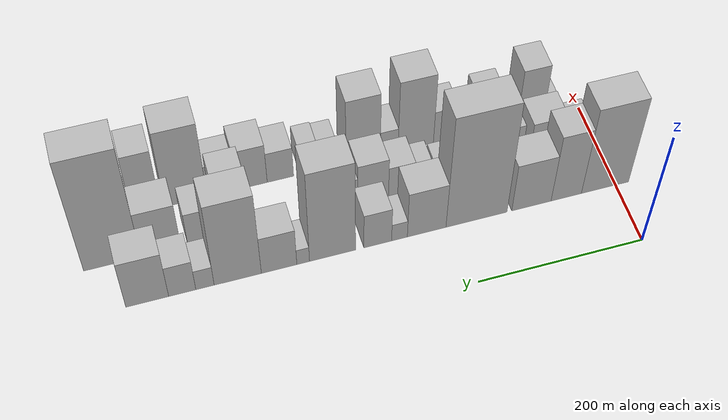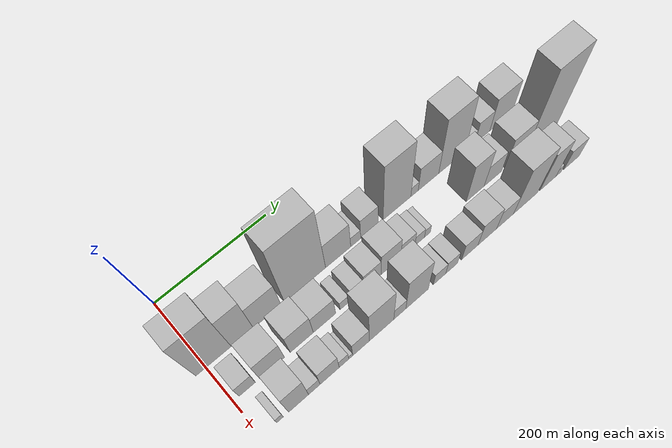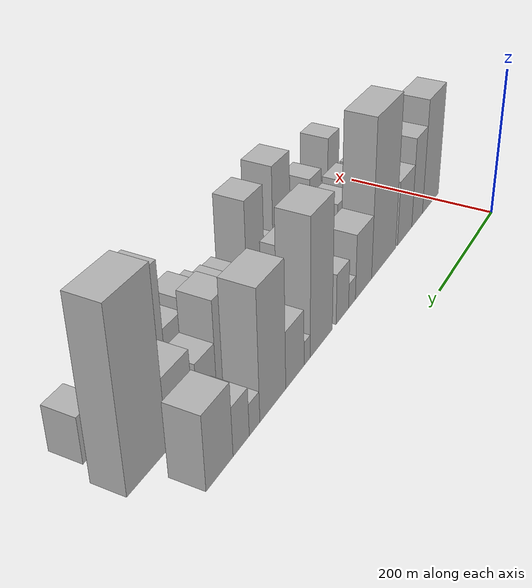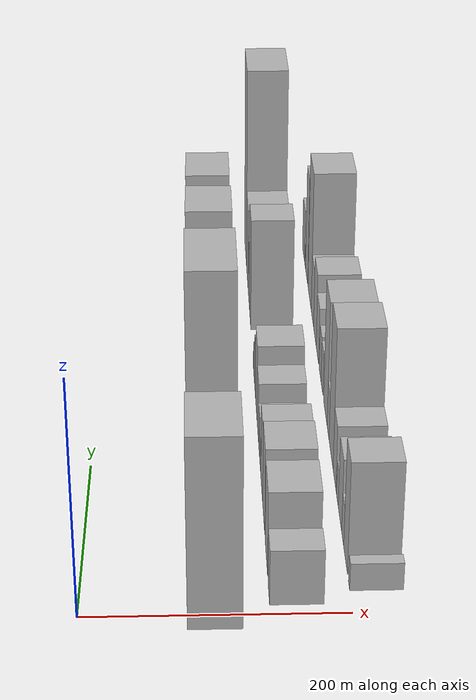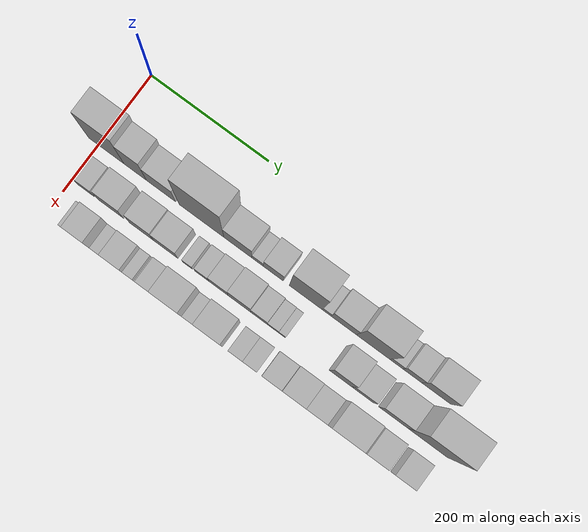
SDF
<sdf version="1.6">
 <world name="default">
  <model name="building_19">
   <static>1</static>
   <pose>100.0000 13.7449 0 0.000000 0.000000 0.000000</pose>
   <link name="link">
    <pose>0 0 81.00 0 0 0</pose>
    <collision name="collision"><geometry><box><size>40.0000 60.1446 162.0000</size></box></geometry></collision>
    <visual name="visual">
     <cast_shadows>0</cast_shadows>
     <geometry><box><size>40.0000 60.1446 162.0000</size></box></geometry>
     <material>
      <script>
       <uri>model://HANNAS_wall/materials/scripts</uri>
       <uri>model://HANNAS_wall/materials/textures</uri>
       <name>vrc/HANNAS_wall</name>
      </script>
     </material>
    </visual>
   </link>
  </model>
  <model name="building_20">
   <static>1</static>
   <pose>100.0000 62.9735 0 0.000000 0.000000 0.000000</pose>
   <link name="link">
    <pose>0 0 63.00 0 0 0</pose>
    <collision name="collision"><geometry><box><size>40.0000 38.3127 126.0000</size></box></geometry></collision>
    <visual name="visual">
     <cast_shadows>0</cast_shadows>
     <geometry><box><size>40.0000 38.3127 126.0000</size></box></geometry>
     <material>
      <script>
       <uri>model://HANNAS_wall/materials/scripts</uri>
       <uri>model://HANNAS_wall/materials/textures</uri>
       <name>vrc/HANNAS_wall</name>
      </script>
     </material>
    </visual>
   </link>
  </model>
  <model name="building_21">
   <static>1</static>
   <pose>100.0000 106.6923 0 0.000000 0.000000 0.000000</pose>
   <link name="link">
    <pose>0 0 45.00 0 0 0</pose>
    <collision name="collision"><geometry><box><size>40.0000 49.1248 90.0000</size></box></geometry></collision>
    <visual name="visual">
     <cast_shadows>0</cast_shadows>
     <geometry><box><size>40.0000 49.1248 90.0000</size></box></geometry>
     <material>
      <script>
       <uri>model://HANNAS_wall/materials/scripts</uri>
       <uri>model://HANNAS_wall/materials/textures</uri>
       <name>vrc/HANNAS_wall</name>
      </script>
     </material>
    </visual>
   </link>
  </model>
  <model name="building_22">
   <static>1</static>
   <pose>100.0000 174.9727 0 0.000000 0.000000 0.000000</pose>
   <link name="link">
    <pose>0 0 105.00 0 0 0</pose>
    <collision name="collision"><geometry><box><size>40.0000 75.4360 210.0000</size></box></geometry></collision>
    <visual name="visual">
     <cast_shadows>0</cast_shadows>
     <geometry><box><size>40.0000 75.4360 210.0000</size></box></geometry>
     <material>
      <script>
       <uri>model://HANNAS_wall/materials/scripts</uri>
       <uri>model://HANNAS_wall/materials/textures</uri>
       <name>vrc/HANNAS_wall</name>
      </script>
     </material>
    </visual>
   </link>
  </model>
  <model name="building_23">
   <static>1</static>
   <pose>100.0000 236.2679 0 0.000000 0.000000 0.000000</pose>
   <link name="link">
    <pose>0 0 43.50 0 0 0</pose>
    <collision name="collision"><geometry><box><size>40.0000 47.1543 87.0000</size></box></geometry></collision>
    <visual name="visual">
     <cast_shadows>0</cast_shadows>
     <geometry><box><size>40.0000 47.1543 87.0000</size></box></geometry>
     <material>
      <script>
       <uri>model://HANNAS_wall/materials/scripts</uri>
       <uri>model://HANNAS_wall/materials/textures</uri>
       <name>vrc/HANNAS_wall</name>
      </script>
     </material>
    </visual>
   </link>
  </model>
  <model name="building_24">
   <static>1</static>
   <pose>100.0000 269.3760 0 0.000000 0.000000 0.000000</pose>
   <link name="link">
    <pose>0 0 16.50 0 0 0</pose>
    <collision name="collision"><geometry><box><size>40.0000 19.0619 33.0000</size></box></geometry></collision>
    <visual name="visual">
     <cast_shadows>0</cast_shadows>
     <geometry><box><size>40.0000 19.0619 33.0000</size></box></geometry>
     <material>
      <script>
       <uri>model://HANNAS_wall/materials/scripts</uri>
       <uri>model://HANNAS_wall/materials/textures</uri>
       <name>vrc/HANNAS_wall</name>
      </script>
     </material>
    </visual>
   </link>
  </model>
  <model name="building_25">
   <static>1</static>
   <pose>100.0000 295.6303 0 0.000000 0.000000 0.000000</pose>
   <link name="link">
    <pose>0 0 33.00 0 0 0</pose>
    <collision name="collision"><geometry><box><size>40.0000 33.4467 66.0000</size></box></geometry></collision>
    <visual name="visual">
     <cast_shadows>0</cast_shadows>
     <geometry><box><size>40.0000 33.4467 66.0000</size></box></geometry>
     <material>
      <script>
       <uri>model://HANNAS_wall/materials/scripts</uri>
       <uri>model://HANNAS_wall/materials/textures</uri>
       <name>vrc/HANNAS_wall</name>
      </script>
     </material>
    </visual>
   </link>
  </model>
  <model name="building_26">
   <static>1</static>
   <pose>100.0000 349.8147 0 0.000000 0.000000 0.000000</pose>
   <link name="link">
    <pose>0 0 87.00 0 0 0</pose>
    <collision name="collision"><geometry><box><size>40.0000 54.9222 174.0000</size></box></geometry></collision>
    <visual name="visual">
     <cast_shadows>0</cast_shadows>
     <geometry><box><size>40.0000 54.9222 174.0000</size></box></geometry>
     <material>
      <script>
       <uri>model://HANNAS_wall/materials/scripts</uri>
       <uri>model://HANNAS_wall/materials/textures</uri>
       <name>vrc/HANNAS_wall</name>
      </script>
     </material>
    </visual>
   </link>
  </model>
  <model name="building_27">
   <static>1</static>
   <pose>100.0000 384.7906 0 0.000000 0.000000 0.000000</pose>
   <link name="link">
    <pose>0 0 15.00 0 0 0</pose>
    <collision name="collision"><geometry><box><size>40.0000 15.0295 30.0000</size></box></geometry></collision>
    <visual name="visual">
     <cast_shadows>0</cast_shadows>
     <geometry><box><size>40.0000 15.0295 30.0000</size></box></geometry>
     <material>
      <script>
       <uri>model://HANNAS_wall/materials/scripts</uri>
       <uri>model://HANNAS_wall/materials/textures</uri>
       <name>vrc/HANNAS_wall</name>
      </script>
     </material>
    </visual>
   </link>
  </model>
  <model name="building_28">
   <static>1</static>
   <pose>100.0000 413.1825 0 0.000000 0.000000 0.000000</pose>
   <link name="link">
    <pose>0 0 36.00 0 0 0</pose>
    <collision name="collision"><geometry><box><size>40.0000 41.7544 72.0000</size></box></geometry></collision>
    <visual name="visual">
     <cast_shadows>0</cast_shadows>
     <geometry><box><size>40.0000 41.7544 72.0000</size></box></geometry>
     <material>
      <script>
       <uri>model://HANNAS_wall/materials/scripts</uri>
       <uri>model://HANNAS_wall/materials/textures</uri>
       <name>vrc/HANNAS_wall</name>
      </script>
     </material>
    </visual>
   </link>
  </model>
  <model name="building_29">
   <static>1</static>
   <pose>100.0000 461.6059 0 0.000000 0.000000 0.000000</pose>
   <link name="link">
    <pose>0 0 79.50 0 0 0</pose>
    <collision name="collision"><geometry><box><size>40.0000 55.0923 159.0000</size></box></geometry></collision>
    <visual name="visual">
     <cast_shadows>0</cast_shadows>
     <geometry><box><size>40.0000 55.0923 159.0000</size></box></geometry>
     <material>
      <script>
       <uri>model://HANNAS_wall/materials/scripts</uri>
       <uri>model://HANNAS_wall/materials/textures</uri>
       <name>vrc/HANNAS_wall</name>
      </script>
     </material>
    </visual>
   </link>
  </model>
  <model name="building_30">
   <static>1</static>
   <pose>100.0000 499.7639 0 0.000000 0.000000 0.000000</pose>
   <link name="link">
    <pose>0 0 19.50 0 0 0</pose>
    <collision name="collision"><geometry><box><size>40.0000 21.2238 39.0000</size></box></geometry></collision>
    <visual name="visual">
     <cast_shadows>0</cast_shadows>
     <geometry><box><size>40.0000 21.2238 39.0000</size></box></geometry>
     <material>
      <script>
       <uri>model://HANNAS_wall/materials/scripts</uri>
       <uri>model://HANNAS_wall/materials/textures</uri>
       <name>vrc/HANNAS_wall</name>
      </script>
     </material>
    </visual>
   </link>
  </model>
  <model name="building_31">
   <static>1</static>
   <pose>100.0000 526.0002 0 0.000000 0.000000 0.000000</pose>
   <link name="link">
    <pose>0 0 30.00 0 0 0</pose>
    <collision name="collision"><geometry><box><size>40.0000 31.2488 60.0000</size></box></geometry></collision>
    <visual name="visual">
     <cast_shadows>0</cast_shadows>
     <geometry><box><size>40.0000 31.2488 60.0000</size></box></geometry>
     <material>
      <script>
       <uri>model://HANNAS_wall/materials/scripts</uri>
       <uri>model://HANNAS_wall/materials/textures</uri>
       <name>vrc/HANNAS_wall</name>
      </script>
     </material>
    </visual>
   </link>
  </model>
  <model name="building_32">
   <static>1</static>
   <pose>100.0000 566.1386 0 0.000000 0.000000 0.000000</pose>
   <link name="link">
    <pose>0 0 45.00 0 0 0</pose>
    <collision name="collision"><geometry><box><size>40.0000 49.0280 90.0000</size></box></geometry></collision>
    <visual name="visual">
     <cast_shadows>0</cast_shadows>
     <geometry><box><size>40.0000 49.0280 90.0000</size></box></geometry>
     <material>
      <script>
       <uri>model://HANNAS_wall/materials/scripts</uri>
       <uri>model://HANNAS_wall/materials/textures</uri>
       <name>vrc/HANNAS_wall</name>
      </script>
     </material>
    </visual>
   </link>
  </model>
  <model name="building_47">
   <static>1</static>
   <pose>160.0000 24.4172 0 0.000000 0.000000 0.000000</pose>
   <link name="link">
    <pose>0 0 24.00 0 0 0</pose>
    <collision name="collision"><geometry><box><size>40.0000 27.6064 48.0000</size></box></geometry></collision>
    <visual name="visual">
     <cast_shadows>0</cast_shadows>
     <geometry><box><size>40.0000 27.6064 48.0000</size></box></geometry>
     <material>
      <script>
       <uri>model://HANNAS_wall/materials/scripts</uri>
       <uri>model://HANNAS_wall/materials/textures</uri>
       <name>vrc/HANNAS_wall</name>
      </script>
     </material>
    </visual>
   </link>
  </model>
  <model name="building_48">
   <static>1</static>
   <pose>160.0000 66.8091 0 0.000000 0.000000 0.000000</pose>
   <link name="link">
    <pose>0 0 37.50 0 0 0</pose>
    <collision name="collision"><geometry><box><size>40.0000 43.1776 75.0000</size></box></geometry></collision>
    <visual name="visual">
     <cast_shadows>0</cast_shadows>
     <geometry><box><size>40.0000 43.1776 75.0000</size></box></geometry>
     <material>
      <script>
       <uri>model://HANNAS_wall/materials/scripts</uri>
       <uri>model://HANNAS_wall/materials/textures</uri>
       <name>vrc/HANNAS_wall</name>
      </script>
     </material>
    </visual>
   </link>
  </model>
  <model name="building_49">
   <static>1</static>
   <pose>160.0000 118.9886 0 0.000000 0.000000 0.000000</pose>
   <link name="link">
    <pose>0 0 39.00 0 0 0</pose>
    <collision name="collision"><geometry><box><size>40.0000 41.1814 78.0000</size></box></geometry></collision>
    <visual name="visual">
     <cast_shadows>0</cast_shadows>
     <geometry><box><size>40.0000 41.1814 78.0000</size></box></geometry>
     <material>
      <script>
       <uri>model://HANNAS_wall/materials/scripts</uri>
       <uri>model://HANNAS_wall/materials/textures</uri>
       <name>vrc/HANNAS_wall</name>
      </script>
     </material>
    </visual>
   </link>
  </model>
  <model name="building_50">
   <static>1</static>
   <pose>160.0000 159.7664 0 0.000000 0.000000 0.000000</pose>
   <link name="link">
    <pose>0 0 34.50 0 0 0</pose>
    <collision name="collision"><geometry><box><size>40.0000 40.3743 69.0000</size></box></geometry></collision>
    <visual name="visual">
     <cast_shadows>0</cast_shadows>
     <geometry><box><size>40.0000 40.3743 69.0000</size></box></geometry>
     <material>
      <script>
       <uri>model://HANNAS_wall/materials/scripts</uri>
       <uri>model://HANNAS_wall/materials/textures</uri>
       <name>vrc/HANNAS_wall</name>
      </script>
     </material>
    </visual>
   </link>
  </model>
  <model name="building_51">
   <static>1</static>
   <pose>160.0000 196.2939 0 0.000000 0.000000 0.000000</pose>
   <link name="link">
    <pose>0 0 15.00 0 0 0</pose>
    <collision name="collision"><geometry><box><size>40.0000 16.6806 30.0000</size></box></geometry></collision>
    <visual name="visual">
     <cast_shadows>0</cast_shadows>
     <geometry><box><size>40.0000 16.6806 30.0000</size></box></geometry>
     <material>
      <script>
       <uri>model://HANNAS_wall/materials/scripts</uri>
       <uri>model://HANNAS_wall/materials/textures</uri>
       <name>vrc/HANNAS_wall</name>
      </script>
     </material>
    </visual>
   </link>
  </model>
  <model name="building_52">
   <static>1</static>
   <pose>160.0000 220.3029 0 0.000000 0.000000 0.000000</pose>
   <link name="link">
    <pose>0 0 19.50 0 0 0</pose>
    <collision name="collision"><geometry><box><size>40.0000 23.3374 39.0000</size></box></geometry></collision>
    <visual name="visual">
     <cast_shadows>0</cast_shadows>
     <geometry><box><size>40.0000 23.3374 39.0000</size></box></geometry>
     <material>
      <script>
       <uri>model://HANNAS_wall/materials/scripts</uri>
       <uri>model://HANNAS_wall/materials/textures</uri>
       <name>vrc/HANNAS_wall</name>
      </script>
     </material>
    </visual>
   </link>
  </model>
  <model name="building_53">
   <static>1</static>
   <pose>160.0000 248.1560 0 0.000000 0.000000 0.000000</pose>
   <link name="link">
    <pose>0 0 28.50 0 0 0</pose>
    <collision name="collision"><geometry><box><size>40.0000 32.3688 57.0000</size></box></geometry></collision>
    <visual name="visual">
     <cast_shadows>0</cast_shadows>
     <geometry><box><size>40.0000 32.3688 57.0000</size></box></geometry>
     <material>
      <script>
       <uri>model://HANNAS_wall/materials/scripts</uri>
       <uri>model://HANNAS_wall/materials/textures</uri>
       <name>vrc/HANNAS_wall</name>
      </script>
     </material>
    </visual>
   </link>
  </model>
  <model name="building_54">
   <static>1</static>
   <pose>160.0000 283.1854 0 0.000000 0.000000 0.000000</pose>
   <link name="link">
    <pose>0 0 37.50 0 0 0</pose>
    <collision name="collision"><geometry><box><size>40.0000 37.6901 75.0000</size></box></geometry></collision>
    <visual name="visual">
     <cast_shadows>0</cast_shadows>
     <geometry><box><size>40.0000 37.6901 75.0000</size></box></geometry>
     <material>
      <script>
       <uri>model://HANNAS_wall/materials/scripts</uri>
       <uri>model://HANNAS_wall/materials/textures</uri>
       <name>vrc/HANNAS_wall</name>
      </script>
     </material>
    </visual>
   </link>
  </model>
  <model name="building_55">
   <static>1</static>
   <pose>160.0000 315.8665 0 0.000000 0.000000 0.000000</pose>
   <link name="link">
    <pose>0 0 25.50 0 0 0</pose>
    <collision name="collision"><geometry><box><size>40.0000 27.6720 51.0000</size></box></geometry></collision>
    <visual name="visual">
     <cast_shadows>0</cast_shadows>
     <geometry><box><size>40.0000 27.6720 51.0000</size></box></geometry>
     <material>
      <script>
       <uri>model://HANNAS_wall/materials/scripts</uri>
       <uri>model://HANNAS_wall/materials/textures</uri>
       <name>vrc/HANNAS_wall</name>
      </script>
     </material>
    </visual>
   </link>
  </model>
  <model name="building_56">
   <static>1</static>
   <pose>160.0000 339.1009 0 0.000000 0.000000 0.000000</pose>
   <link name="link">
    <pose>0 0 16.50 0 0 0</pose>
    <collision name="collision"><geometry><box><size>40.0000 18.7968 33.0000</size></box></geometry></collision>
    <visual name="visual">
     <cast_shadows>0</cast_shadows>
     <geometry><box><size>40.0000 18.7968 33.0000</size></box></geometry>
     <material>
      <script>
       <uri>model://HANNAS_wall/materials/scripts</uri>
       <uri>model://HANNAS_wall/materials/textures</uri>
       <name>vrc/HANNAS_wall</name>
      </script>
     </material>
    </visual>
   </link>
  </model>
  <model name="building_57">
   <static>1</static>
   <pose>160.0000 354.3239 0 0.000000 0.000000 0.000000</pose>
   <link name="link">
    <pose>0 0 13.50 0 0 0</pose>
    <collision name="collision"><geometry><box><size>40.0000 11.6493 27.0000</size></box></geometry></collision>
    <visual name="visual">
     <cast_shadows>0</cast_shadows>
     <geometry><box><size>40.0000 11.6493 27.0000</size></box></geometry>
     <material>
      <script>
       <uri>model://HANNAS_wall/materials/scripts</uri>
       <uri>model://HANNAS_wall/materials/textures</uri>
       <name>vrc/HANNAS_wall</name>
      </script>
     </material>
    </visual>
   </link>
  </model>
  <model name="building_58">
   <static>1</static>
   <pose>160.0000 451.1487 0 0.000000 0.000000 0.000000</pose>
   <link name="link">
    <pose>0 0 57.00 0 0 0</pose>
    <collision name="collision"><geometry><box><size>40.0000 37.3334 114.0000</size></box></geometry></collision>
    <visual name="visual">
     <cast_shadows>0</cast_shadows>
     <geometry><box><size>40.0000 37.3334 114.0000</size></box></geometry>
     <material>
      <script>
       <uri>model://HANNAS_wall/materials/scripts</uri>
       <uri>model://HANNAS_wall/materials/textures</uri>
       <name>vrc/HANNAS_wall</name>
      </script>
     </material>
    </visual>
   </link>
  </model>
  <model name="building_59">
   <static>1</static>
   <pose>160.0000 488.1367 0 0.000000 0.000000 0.000000</pose>
   <link name="link">
    <pose>0 0 31.50 0 0 0</pose>
    <collision name="collision"><geometry><box><size>40.0000 36.6426 63.0000</size></box></geometry></collision>
    <visual name="visual">
     <cast_shadows>0</cast_shadows>
     <geometry><box><size>40.0000 36.6426 63.0000</size></box></geometry>
     <material>
      <script>
       <uri>model://HANNAS_wall/materials/scripts</uri>
       <uri>model://HANNAS_wall/materials/textures</uri>
       <name>vrc/HANNAS_wall</name>
      </script>
     </material>
    </visual>
   </link>
  </model>
  <model name="building_60">
   <static>1</static>
   <pose>160.0000 538.0304 0 0.000000 0.000000 0.000000</pose>
   <link name="link">
    <pose>0 0 43.50 0 0 0</pose>
    <collision name="collision"><geometry><box><size>40.0000 47.1448 87.0000</size></box></geometry></collision>
    <visual name="visual">
     <cast_shadows>0</cast_shadows>
     <geometry><box><size>40.0000 47.1448 87.0000</size></box></geometry>
     <material>
      <script>
       <uri>model://HANNAS_wall/materials/scripts</uri>
       <uri>model://HANNAS_wall/materials/textures</uri>
       <name>vrc/HANNAS_wall</name>
      </script>
     </material>
    </visual>
   </link>
  </model>
  <model name="building_61">
   <static>1</static>
   <pose>160.0000 594.7476 0 0.000000 0.000000 0.000000</pose>
   <link name="link">
    <pose>0 0 106.50 0 0 0</pose>
    <collision name="collision"><geometry><box><size>40.0000 66.2896 213.0000</size></box></geometry></collision>
    <visual name="visual">
     <cast_shadows>0</cast_shadows>
     <geometry><box><size>40.0000 66.2896 213.0000</size></box></geometry>
     <material>
      <script>
       <uri>model://HANNAS_wall/materials/scripts</uri>
       <uri>model://HANNAS_wall/materials/textures</uri>
       <name>vrc/HANNAS_wall</name>
      </script>
     </material>
    </visual>
   </link>
  </model>
  <model name="building_77">
   <static>1</static>
   <pose>220.0000 31.8348 0 0.000000 0.000000 0.000000</pose>
   <link name="link">
    <pose>0 0 12.00 0 0 0</pose>
    <collision name="collision"><geometry><box><size>40.0000 11.1901 24.0000</size></box></geometry></collision>
    <visual name="visual">
     <cast_shadows>0</cast_shadows>
     <geometry><box><size>40.0000 11.1901 24.0000</size></box></geometry>
     <material>
      <script>
       <uri>model://HANNAS_wall/materials/scripts</uri>
       <uri>model://HANNAS_wall/materials/textures</uri>
       <name>vrc/HANNAS_wall</name>
      </script>
     </material>
    </visual>
   </link>
  </model>
  <model name="building_78">
   <static>1</static>
   <pose>220.0000 63.5745 0 0.000000 0.000000 0.000000</pose>
   <link name="link">
    <pose>0 0 49.50 0 0 0</pose>
    <collision name="collision"><geometry><box><size>40.0000 34.2892 99.0000</size></box></geometry></collision>
    <visual name="visual">
     <cast_shadows>0</cast_shadows>
     <geometry><box><size>40.0000 34.2892 99.0000</size></box></geometry>
     <material>
      <script>
       <uri>model://HANNAS_wall/materials/scripts</uri>
       <uri>model://HANNAS_wall/materials/textures</uri>
       <name>vrc/HANNAS_wall</name>
      </script>
     </material>
    </visual>
   </link>
  </model>
  <model name="building_79">
   <static>1</static>
   <pose>220.0000 90.7879 0 0.000000 0.000000 0.000000</pose>
   <link name="link">
    <pose>0 0 18.00 0 0 0</pose>
    <collision name="collision"><geometry><box><size>40.0000 20.1375 36.0000</size></box></geometry></collision>
    <visual name="visual">
     <cast_shadows>0</cast_shadows>
     <geometry><box><size>40.0000 20.1375 36.0000</size></box></geometry>
     <material>
      <script>
       <uri>model://HANNAS_wall/materials/scripts</uri>
       <uri>model://HANNAS_wall/materials/textures</uri>
       <name>vrc/HANNAS_wall</name>
      </script>
     </material>
    </visual>
   </link>
  </model>
  <model name="building_80">
   <static>1</static>
   <pose>220.0000 117.6934 0 0.000000 0.000000 0.000000</pose>
   <link name="link">
    <pose>0 0 33.00 0 0 0</pose>
    <collision name="collision"><geometry><box><size>40.0000 33.6736 66.0000</size></box></geometry></collision>
    <visual name="visual">
     <cast_shadows>0</cast_shadows>
     <geometry><box><size>40.0000 33.6736 66.0000</size></box></geometry>
     <material>
      <script>
       <uri>model://HANNAS_wall/materials/scripts</uri>
       <uri>model://HANNAS_wall/materials/textures</uri>
       <name>vrc/HANNAS_wall</name>
      </script>
     </material>
    </visual>
   </link>
  </model>
  <model name="building_81">
   <static>1</static>
   <pose>220.0000 143.0317 0 0.000000 0.000000 0.000000</pose>
   <link name="link">
    <pose>0 0 16.50 0 0 0</pose>
    <collision name="collision"><geometry><box><size>40.0000 17.0030 33.0000</size></box></geometry></collision>
    <visual name="visual">
     <cast_shadows>0</cast_shadows>
     <geometry><box><size>40.0000 17.0030 33.0000</size></box></geometry>
     <material>
      <script>
       <uri>model://HANNAS_wall/materials/scripts</uri>
       <uri>model://HANNAS_wall/materials/textures</uri>
       <name>vrc/HANNAS_wall</name>
      </script>
     </material>
    </visual>
   </link>
  </model>
  <model name="building_82">
   <static>1</static>
   <pose>220.0000 155.1488 0 0.000000 0.000000 0.000000</pose>
   <link name="link">
    <pose>0 0 7.50 0 0 0</pose>
    <collision name="collision"><geometry><box><size>40.0000 7.2311 15.0000</size></box></geometry></collision>
    <visual name="visual">
     <cast_shadows>0</cast_shadows>
     <geometry><box><size>40.0000 7.2311 15.0000</size></box></geometry>
     <material>
      <script>
       <uri>model://HANNAS_wall/materials/scripts</uri>
       <uri>model://HANNAS_wall/materials/textures</uri>
       <name>vrc/HANNAS_wall</name>
      </script>
     </material>
    </visual>
   </link>
  </model>
  <model name="building_83">
   <static>1</static>
   <pose>220.0000 173.8709 0 0.000000 0.000000 0.000000</pose>
   <link name="link">
    <pose>0 0 30.00 0 0 0</pose>
    <collision name="collision"><geometry><box><size>40.0000 30.2131 60.0000</size></box></geometry></collision>
    <visual name="visual">
     <cast_shadows>0</cast_shadows>
     <geometry><box><size>40.0000 30.2131 60.0000</size></box></geometry>
     <material>
      <script>
       <uri>model://HANNAS_wall/materials/scripts</uri>
       <uri>model://HANNAS_wall/materials/textures</uri>
       <name>vrc/HANNAS_wall</name>
      </script>
     </material>
    </visual>
   </link>
  </model>
  <model name="building_84">
   <static>1</static>
   <pose>220.0000 211.4554 0 0.000000 0.000000 0.000000</pose>
   <link name="link">
    <pose>0 0 66.00 0 0 0</pose>
    <collision name="collision"><geometry><box><size>40.0000 44.9558 132.0000</size></box></geometry></collision>
    <visual name="visual">
     <cast_shadows>0</cast_shadows>
     <geometry><box><size>40.0000 44.9558 132.0000</size></box></geometry>
     <material>
      <script>
       <uri>model://HANNAS_wall/materials/scripts</uri>
       <uri>model://HANNAS_wall/materials/textures</uri>
       <name>vrc/HANNAS_wall</name>
      </script>
     </material>
    </visual>
   </link>
  </model>
  <model name="building_85">
   <static>1</static>
   <pose>220.0000 245.1963 0 0.000000 0.000000 0.000000</pose>
   <link name="link">
    <pose>0 0 22.50 0 0 0</pose>
    <collision name="collision"><geometry><box><size>40.0000 22.5261 45.0000</size></box></geometry></collision>
    <visual name="visual">
     <cast_shadows>0</cast_shadows>
     <geometry><box><size>40.0000 22.5261 45.0000</size></box></geometry>
     <material>
      <script>
       <uri>model://HANNAS_wall/materials/scripts</uri>
       <uri>model://HANNAS_wall/materials/textures</uri>
       <name>vrc/HANNAS_wall</name>
      </script>
     </material>
    </visual>
   </link>
  </model>
  <model name="building_86">
   <static>1</static>
   <pose>220.0000 277.8592 0 0.000000 0.000000 0.000000</pose>
   <link name="link">
    <pose>0 0 60.00 0 0 0</pose>
    <collision name="collision"><geometry><box><size>40.0000 42.7997 120.0000</size></box></geometry></collision>
    <visual name="visual">
     <cast_shadows>0</cast_shadows>
     <geometry><box><size>40.0000 42.7997 120.0000</size></box></geometry>
     <material>
      <script>
       <uri>model://HANNAS_wall/materials/scripts</uri>
       <uri>model://HANNAS_wall/materials/textures</uri>
       <name>vrc/HANNAS_wall</name>
      </script>
     </material>
    </visual>
   </link>
  </model>
  <model name="building_87">
   <static>1</static>
   <pose>220.0000 321.1939 0 0.000000 0.000000 0.000000</pose>
   <link name="link">
    <pose>0 0 21.00 0 0 0</pose>
    <collision name="collision"><geometry><box><size>40.0000 23.8697 42.0000</size></box></geometry></collision>
    <visual name="visual">
     <cast_shadows>0</cast_shadows>
     <geometry><box><size>40.0000 23.8697 42.0000</size></box></geometry>
     <material>
      <script>
       <uri>model://HANNAS_wall/materials/scripts</uri>
       <uri>model://HANNAS_wall/materials/textures</uri>
       <name>vrc/HANNAS_wall</name>
      </script>
     </material>
    </visual>
   </link>
  </model>
  <model name="building_88">
   <static>1</static>
   <pose>220.0000 344.8246 0 0.000000 0.000000 0.000000</pose>
   <link name="link">
    <pose>0 0 22.50 0 0 0</pose>
    <collision name="collision"><geometry><box><size>40.0000 23.3918 45.0000</size></box></geometry></collision>
    <visual name="visual">
     <cast_shadows>0</cast_shadows>
     <geometry><box><size>40.0000 23.3918 45.0000</size></box></geometry>
     <material>
      <script>
       <uri>model://HANNAS_wall/materials/scripts</uri>
       <uri>model://HANNAS_wall/materials/textures</uri>
       <name>vrc/HANNAS_wall</name>
      </script>
     </material>
    </visual>
   </link>
  </model>
  <model name="building_89">
   <static>1</static>
   <pose>220.0000 380.7426 0 0.000000 0.000000 0.000000</pose>
   <link name="link">
    <pose>0 0 28.50 0 0 0</pose>
    <collision name="collision"><geometry><box><size>40.0000 32.4443 57.0000</size></box></geometry></collision>
    <visual name="visual">
     <cast_shadows>0</cast_shadows>
     <geometry><box><size>40.0000 32.4443 57.0000</size></box></geometry>
     <material>
      <script>
       <uri>model://HANNAS_wall/materials/scripts</uri>
       <uri>model://HANNAS_wall/materials/textures</uri>
       <name>vrc/HANNAS_wall</name>
      </script>
     </material>
    </visual>
   </link>
  </model>
  <model name="building_90">
   <static>1</static>
   <pose>220.0000 416.0376 0 0.000000 0.000000 0.000000</pose>
   <link name="link">
    <pose>0 0 37.50 0 0 0</pose>
    <collision name="collision"><geometry><box><size>40.0000 38.1456 75.0000</size></box></geometry></collision>
    <visual name="visual">
     <cast_shadows>0</cast_shadows>
     <geometry><box><size>40.0000 38.1456 75.0000</size></box></geometry>
     <material>
      <script>
       <uri>model://HANNAS_wall/materials/scripts</uri>
       <uri>model://HANNAS_wall/materials/textures</uri>
       <name>vrc/HANNAS_wall</name>
      </script>
     </material>
    </visual>
   </link>
  </model>
  <model name="building_91">
   <static>1</static>
   <pose>220.0000 452.7241 0 0.000000 0.000000 0.000000</pose>
   <link name="link">
    <pose>0 0 30.00 0 0 0</pose>
    <collision name="collision"><geometry><box><size>40.0000 35.2274 60.0000</size></box></geometry></collision>
    <visual name="visual">
     <cast_shadows>0</cast_shadows>
     <geometry><box><size>40.0000 35.2274 60.0000</size></box></geometry>
     <material>
      <script>
       <uri>model://HANNAS_wall/materials/scripts</uri>
       <uri>model://HANNAS_wall/materials/textures</uri>
       <name>vrc/HANNAS_wall</name>
      </script>
     </material>
    </visual>
   </link>
  </model>
  <model name="building_92">
   <static>1</static>
   <pose>220.0000 495.6975 0 0.000000 0.000000 0.000000</pose>
   <link name="link">
    <pose>0 0 72.00 0 0 0</pose>
    <collision name="collision"><geometry><box><size>40.0000 50.7193 144.0000</size></box></geometry></collision>
    <visual name="visual">
     <cast_shadows>0</cast_shadows>
     <geometry><box><size>40.0000 50.7193 144.0000</size></box></geometry>
     <material>
      <script>
       <uri>model://HANNAS_wall/materials/scripts</uri>
       <uri>model://HANNAS_wall/materials/textures</uri>
       <name>vrc/HANNAS_wall</name>
      </script>
     </material>
    </visual>
   </link>
  </model>
  <model name="building_93">
   <static>1</static>
   <pose>220.0000 543.3832 0 0.000000 0.000000 0.000000</pose>
   <link name="link">
    <pose>0 0 57.00 0 0 0</pose>
    <collision name="collision"><geometry><box><size>40.0000 34.6521 114.0000</size></box></geometry></collision>
    <visual name="visual">
     <cast_shadows>0</cast_shadows>
     <geometry><box><size>40.0000 34.6521 114.0000</size></box></geometry>
     <material>
      <script>
       <uri>model://HANNAS_wall/materials/scripts</uri>
       <uri>model://HANNAS_wall/materials/textures</uri>
       <name>vrc/HANNAS_wall</name>
      </script>
     </material>
    </visual>
   </link>
  </model>
  <model name="building_94">
   <static>1</static>
   <pose>220.0000 566.3789 0 0.000000 0.000000 0.000000</pose>
   <link name="link">
    <pose>0 0 12.00 0 0 0</pose>
    <collision name="collision"><geometry><box><size>40.0000 11.3394 24.0000</size></box></geometry></collision>
    <visual name="visual">
     <cast_shadows>0</cast_shadows>
     <geometry><box><size>40.0000 11.3394 24.0000</size></box></geometry>
     <material>
      <script>
       <uri>model://HANNAS_wall/materials/scripts</uri>
       <uri>model://HANNAS_wall/materials/textures</uri>
       <name>vrc/HANNAS_wall</name>
      </script>
     </material>
    </visual>
   </link>
  </model>
  <model name="building_95">
   <static>1</static>
   <pose>220.0000 594.8761 0 0.000000 0.000000 0.000000</pose>
   <link name="link">
    <pose>0 0 28.50 0 0 0</pose>
    <collision name="collision"><geometry><box><size>40.0000 33.6549 57.0000</size></box></geometry></collision>
    <visual name="visual">
     <cast_shadows>0</cast_shadows>
     <geometry><box><size>40.0000 33.6549 57.0000</size></box></geometry>
     <material>
      <script>
       <uri>model://HANNAS_wall/materials/scripts</uri>
       <uri>model://HANNAS_wall/materials/textures</uri>
       <name>vrc/HANNAS_wall</name>
      </script>
     </material>
    </visual>
   </link>
  </model>
 </world>
</sdf>
